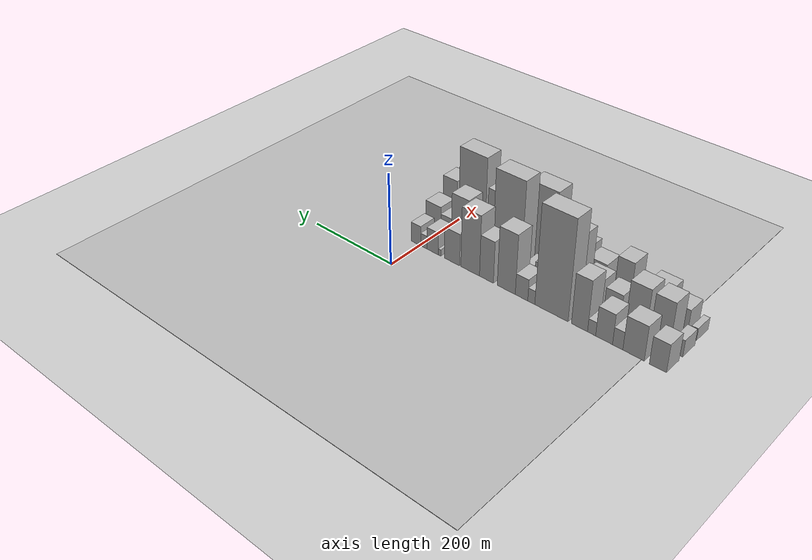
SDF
<sdf version="1.6">
 <world name="default">
  <include><name>ground_plane_1</name><uri>model://HANNAS_ground_plane</uri></include>
  <include>
   <name>ground_plane_2</name>
   <uri>model://HANNAS_ground_plane</uri>
   <pose>100 0 0  0 0 0</pose>
  </include>
  <model name="building_1">
   <static>1</static>
   <pose>100.0000 -531.4663 0 0.000000 0.000000 0.000000</pose>
   <link name="link">
    <pose>0 0 30.00 0 0 0</pose>
    <collision name="collision"><geometry><box><size>40.0000 33.0674 60.0000</size></box></geometry></collision>
    <visual name="visual">
     <cast_shadows>0</cast_shadows>
     <geometry><box><size>40.0000 33.0674 60.0000</size></box></geometry>
     <material>
      <script>
       <uri>model://HANNAS_wall/materials/scripts</uri>
       <uri>model://HANNAS_wall/materials/textures</uri>
       <name>vrc/HANNAS_wall</name>
      </script>
     </material>
    </visual>
   </link>
  </model>
  <model name="building_2">
   <static>1</static>
   <pose>100.0000 -483.7740 0 0.000000 0.000000 0.000000</pose>
   <link name="link">
    <pose>0 0 37.50 0 0 0</pose>
    <collision name="collision"><geometry><box><size>40.0000 42.3172 75.0000</size></box></geometry></collision>
    <visual name="visual">
     <cast_shadows>0</cast_shadows>
     <geometry><box><size>40.0000 42.3172 75.0000</size></box></geometry>
     <material>
      <script>
       <uri>model://HANNAS_wall/materials/scripts</uri>
       <uri>model://HANNAS_wall/materials/textures</uri>
       <name>vrc/HANNAS_wall</name>
      </script>
     </material>
    </visual>
   </link>
  </model>
  <model name="building_3">
   <static>1</static>
   <pose>100.0000 -452.2309 0 0.000000 0.000000 0.000000</pose>
   <link name="link">
    <pose>0 0 19.50 0 0 0</pose>
    <collision name="collision"><geometry><box><size>40.0000 20.7689 39.0000</size></box></geometry></collision>
    <visual name="visual">
     <cast_shadows>0</cast_shadows>
     <geometry><box><size>40.0000 20.7689 39.0000</size></box></geometry>
     <material>
      <script>
       <uri>model://HANNAS_wall/materials/scripts</uri>
       <uri>model://HANNAS_wall/materials/textures</uri>
       <name>vrc/HANNAS_wall</name>
      </script>
     </material>
    </visual>
   </link>
  </model>
  <model name="building_4">
   <static>1</static>
   <pose>100.0000 -424.5817 0 0.000000 0.000000 0.000000</pose>
   <link name="link">
    <pose>0 0 33.00 0 0 0</pose>
    <collision name="collision"><geometry><box><size>40.0000 34.5296 66.0000</size></box></geometry></collision>
    <visual name="visual">
     <cast_shadows>0</cast_shadows>
     <geometry><box><size>40.0000 34.5296 66.0000</size></box></geometry>
     <material>
      <script>
       <uri>model://HANNAS_wall/materials/scripts</uri>
       <uri>model://HANNAS_wall/materials/textures</uri>
       <name>vrc/HANNAS_wall</name>
      </script>
     </material>
    </visual>
   </link>
  </model>
  <model name="building_5">
   <static>1</static>
   <pose>100.0000 -398.8540 0 0.000000 0.000000 0.000000</pose>
   <link name="link">
    <pose>0 0 15.00 0 0 0</pose>
    <collision name="collision"><geometry><box><size>40.0000 16.9257 30.0000</size></box></geometry></collision>
    <visual name="visual">
     <cast_shadows>0</cast_shadows>
     <geometry><box><size>40.0000 16.9257 30.0000</size></box></geometry>
     <material>
      <script>
       <uri>model://HANNAS_wall/materials/scripts</uri>
       <uri>model://HANNAS_wall/materials/textures</uri>
       <name>vrc/HANNAS_wall</name>
      </script>
     </material>
    </visual>
   </link>
  </model>
  <model name="building_6">
   <static>1</static>
   <pose>100.0000 -373.3653 0 0.000000 0.000000 0.000000</pose>
   <link name="link">
    <pose>0 0 55.50 0 0 0</pose>
    <collision name="collision"><geometry><box><size>40.0000 34.0517 111.0000</size></box></geometry></collision>
    <visual name="visual">
     <cast_shadows>0</cast_shadows>
     <geometry><box><size>40.0000 34.0517 111.0000</size></box></geometry>
     <material>
      <script>
       <uri>model://HANNAS_wall/materials/scripts</uri>
       <uri>model://HANNAS_wall/materials/textures</uri>
       <name>vrc/HANNAS_wall</name>
      </script>
     </material>
    </visual>
   </link>
  </model>
  <model name="building_7">
   <static>1</static>
   <pose>100.0000 -312.9656 0 0.000000 0.000000 0.000000</pose>
   <link name="link">
    <pose>0 0 109.50 0 0 0</pose>
    <collision name="collision"><geometry><box><size>40.0000 72.7477 219.0000</size></box></geometry></collision>
    <visual name="visual">
     <cast_shadows>0</cast_shadows>
     <geometry><box><size>40.0000 72.7477 219.0000</size></box></geometry>
     <material>
      <script>
       <uri>model://HANNAS_wall/materials/scripts</uri>
       <uri>model://HANNAS_wall/materials/textures</uri>
       <name>vrc/HANNAS_wall</name>
      </script>
     </material>
    </visual>
   </link>
  </model>
  <model name="building_8">
   <static>1</static>
   <pose>100.0000 -268.7394 0 0.000000 0.000000 0.000000</pose>
   <link name="link">
    <pose>0 0 15.00 0 0 0</pose>
    <collision name="collision"><geometry><box><size>40.0000 15.7048 30.0000</size></box></geometry></collision>
    <visual name="visual">
     <cast_shadows>0</cast_shadows>
     <geometry><box><size>40.0000 15.7048 30.0000</size></box></geometry>
     <material>
      <script>
       <uri>model://HANNAS_wall/materials/scripts</uri>
       <uri>model://HANNAS_wall/materials/textures</uri>
       <name>vrc/HANNAS_wall</name>
      </script>
     </material>
    </visual>
   </link>
  </model>
  <model name="building_9">
   <static>1</static>
   <pose>100.0000 -246.7180 0 0.000000 0.000000 0.000000</pose>
   <link name="link">
    <pose>0 0 24.00 0 0 0</pose>
    <collision name="collision"><geometry><box><size>40.0000 28.3378 48.0000</size></box></geometry></collision>
    <visual name="visual">
     <cast_shadows>0</cast_shadows>
     <geometry><box><size>40.0000 28.3378 48.0000</size></box></geometry>
     <material>
      <script>
       <uri>model://HANNAS_wall/materials/scripts</uri>
       <uri>model://HANNAS_wall/materials/textures</uri>
       <name>vrc/HANNAS_wall</name>
      </script>
     </material>
    </visual>
   </link>
  </model>
  <model name="building_10">
   <static>1</static>
   <pose>100.0000 -211.7277 0 0.000000 0.000000 0.000000</pose>
   <link name="link">
    <pose>0 0 66.00 0 0 0</pose>
    <collision name="collision"><geometry><box><size>40.0000 41.6429 132.0000</size></box></geometry></collision>
    <visual name="visual">
     <cast_shadows>0</cast_shadows>
     <geometry><box><size>40.0000 41.6429 132.0000</size></box></geometry>
     <material>
      <script>
       <uri>model://HANNAS_wall/materials/scripts</uri>
       <uri>model://HANNAS_wall/materials/textures</uri>
       <name>vrc/HANNAS_wall</name>
      </script>
     </material>
    </visual>
   </link>
  </model>
  <model name="building_11">
   <static>1</static>
   <pose>100.0000 -165.4333 0 0.000000 0.000000 0.000000</pose>
   <link name="link">
    <pose>0 0 46.50 0 0 0</pose>
    <collision name="collision"><geometry><box><size>40.0000 32.9459 93.0000</size></box></geometry></collision>
    <visual name="visual">
     <cast_shadows>0</cast_shadows>
     <geometry><box><size>40.0000 32.9459 93.0000</size></box></geometry>
     <material>
      <script>
       <uri>model://HANNAS_wall/materials/scripts</uri>
       <uri>model://HANNAS_wall/materials/textures</uri>
       <name>vrc/HANNAS_wall</name>
      </script>
     </material>
    </visual>
   </link>
  </model>
  <model name="building_12">
   <static>1</static>
   <pose>100.0000 -126.4425 0 0.000000 0.000000 0.000000</pose>
   <link name="link">
    <pose>0 0 67.50 0 0 0</pose>
    <collision name="collision"><geometry><box><size>40.0000 45.0357 135.0000</size></box></geometry></collision>
    <visual name="visual">
     <cast_shadows>0</cast_shadows>
     <geometry><box><size>40.0000 45.0357 135.0000</size></box></geometry>
     <material>
      <script>
       <uri>model://HANNAS_wall/materials/scripts</uri>
       <uri>model://HANNAS_wall/materials/textures</uri>
       <name>vrc/HANNAS_wall</name>
      </script>
     </material>
    </visual>
   </link>
  </model>
  <model name="building_13">
   <static>1</static>
   <pose>100.0000 -82.1082 0 0.000000 0.000000 0.000000</pose>
   <link name="link">
    <pose>0 0 36.00 0 0 0</pose>
    <collision name="collision"><geometry><box><size>40.0000 37.6330 72.0000</size></box></geometry></collision>
    <visual name="visual">
     <cast_shadows>0</cast_shadows>
     <geometry><box><size>40.0000 37.6330 72.0000</size></box></geometry>
     <material>
      <script>
       <uri>model://HANNAS_wall/materials/scripts</uri>
       <uri>model://HANNAS_wall/materials/textures</uri>
       <name>vrc/HANNAS_wall</name>
      </script>
     </material>
    </visual>
   </link>
  </model>
  <model name="building_14">
   <static>1</static>
   <pose>100.0000 -51.2164 0 0.000000 0.000000 0.000000</pose>
   <link name="link">
    <pose>0 0 7.50 0 0 0</pose>
    <collision name="collision"><geometry><box><size>40.0000 6.1504 15.0000</size></box></geometry></collision>
    <visual name="visual">
     <cast_shadows>0</cast_shadows>
     <geometry><box><size>40.0000 6.1504 15.0000</size></box></geometry>
     <material>
      <script>
       <uri>model://HANNAS_wall/materials/scripts</uri>
       <uri>model://HANNAS_wall/materials/textures</uri>
       <name>vrc/HANNAS_wall</name>
      </script>
     </material>
    </visual>
   </link>
  </model>
  <model name="building_15">
   <static>1</static>
   <pose>100.0000 -33.5812 0 0.000000 0.000000 0.000000</pose>
   <link name="link">
    <pose>0 0 25.50 0 0 0</pose>
    <collision name="collision"><geometry><box><size>40.0000 29.1201 51.0000</size></box></geometry></collision>
    <visual name="visual">
     <cast_shadows>0</cast_shadows>
     <geometry><box><size>40.0000 29.1201 51.0000</size></box></geometry>
     <material>
      <script>
       <uri>model://HANNAS_wall/materials/scripts</uri>
       <uri>model://HANNAS_wall/materials/textures</uri>
       <name>vrc/HANNAS_wall</name>
      </script>
     </material>
    </visual>
   </link>
  </model>
  <model name="building_16">
   <static>1</static>
   <pose>100.0000 -11.0467 0 0.000000 0.000000 0.000000</pose>
   <link name="link">
    <pose>0 0 15.00 0 0 0</pose>
    <collision name="collision"><geometry><box><size>40.0000 15.9488 30.0000</size></box></geometry></collision>
    <visual name="visual">
     <cast_shadows>0</cast_shadows>
     <geometry><box><size>40.0000 15.9488 30.0000</size></box></geometry>
     <material>
      <script>
       <uri>model://HANNAS_wall/materials/scripts</uri>
       <uri>model://HANNAS_wall/materials/textures</uri>
       <name>vrc/HANNAS_wall</name>
      </script>
     </material>
    </visual>
   </link>
  </model>
  <model name="building_17">
   <static>1</static>
   <pose>100.0000 9.3485 0 0.000000 0.000000 0.000000</pose>
   <link name="link">
    <pose>0 0 22.50 0 0 0</pose>
    <collision name="collision"><geometry><box><size>40.0000 24.8416 45.0000</size></box></geometry></collision>
    <visual name="visual">
     <cast_shadows>0</cast_shadows>
     <geometry><box><size>40.0000 24.8416 45.0000</size></box></geometry>
     <material>
      <script>
       <uri>model://HANNAS_wall/materials/scripts</uri>
       <uri>model://HANNAS_wall/materials/textures</uri>
       <name>vrc/HANNAS_wall</name>
      </script>
     </material>
    </visual>
   </link>
  </model>
  <model name="building_35">
   <static>1</static>
   <pose>152.0000 -538.6052 0 0.000000 0.000000 0.000000</pose>
   <link name="link">
    <pose>0 0 18.00 0 0 0</pose>
    <collision name="collision"><geometry><box><size>40.0000 18.7897 36.0000</size></box></geometry></collision>
    <visual name="visual">
     <cast_shadows>0</cast_shadows>
     <geometry><box><size>40.0000 18.7897 36.0000</size></box></geometry>
     <material>
      <script>
       <uri>model://HANNAS_wall/materials/scripts</uri>
       <uri>model://HANNAS_wall/materials/textures</uri>
       <name>vrc/HANNAS_wall</name>
      </script>
     </material>
    </visual>
   </link>
  </model>
  <model name="building_36">
   <static>1</static>
   <pose>152.0000 -502.4161 0 0.000000 0.000000 0.000000</pose>
   <link name="link">
    <pose>0 0 51.00 0 0 0</pose>
    <collision name="collision"><geometry><box><size>40.0000 39.5884 102.0000</size></box></geometry></collision>
    <visual name="visual">
     <cast_shadows>0</cast_shadows>
     <geometry><box><size>40.0000 39.5884 102.0000</size></box></geometry>
     <material>
      <script>
       <uri>model://HANNAS_wall/materials/scripts</uri>
       <uri>model://HANNAS_wall/materials/textures</uri>
       <name>vrc/HANNAS_wall</name>
      </script>
     </material>
    </visual>
   </link>
  </model>
  <model name="building_37">
   <static>1</static>
   <pose>152.0000 -453.9032 0 0.000000 0.000000 0.000000</pose>
   <link name="link">
    <pose>0 0 52.50 0 0 0</pose>
    <collision name="collision"><geometry><box><size>40.0000 41.4374 105.0000</size></box></geometry></collision>
    <visual name="visual">
     <cast_shadows>0</cast_shadows>
     <geometry><box><size>40.0000 41.4374 105.0000</size></box></geometry>
     <material>
      <script>
       <uri>model://HANNAS_wall/materials/scripts</uri>
       <uri>model://HANNAS_wall/materials/textures</uri>
       <name>vrc/HANNAS_wall</name>
      </script>
     </material>
    </visual>
   </link>
  </model>
  <model name="building_38">
   <static>1</static>
   <pose>152.0000 -405.3885 0 0.000000 0.000000 0.000000</pose>
   <link name="link">
    <pose>0 0 33.00 0 0 0</pose>
    <collision name="collision"><geometry><box><size>40.0000 35.5921 66.0000</size></box></geometry></collision>
    <visual name="visual">
     <cast_shadows>0</cast_shadows>
     <geometry><box><size>40.0000 35.5921 66.0000</size></box></geometry>
     <material>
      <script>
       <uri>model://HANNAS_wall/materials/scripts</uri>
       <uri>model://HANNAS_wall/materials/textures</uri>
       <name>vrc/HANNAS_wall</name>
      </script>
     </material>
    </visual>
   </link>
  </model>
  <model name="building_39">
   <static>1</static>
   <pose>152.0000 -359.5633 0 0.000000 0.000000 0.000000</pose>
   <link name="link">
    <pose>0 0 37.50 0 0 0</pose>
    <collision name="collision"><geometry><box><size>40.0000 42.0581 75.0000</size></box></geometry></collision>
    <visual name="visual">
     <cast_shadows>0</cast_shadows>
     <geometry><box><size>40.0000 42.0581 75.0000</size></box></geometry>
     <material>
      <script>
       <uri>model://HANNAS_wall/materials/scripts</uri>
       <uri>model://HANNAS_wall/materials/textures</uri>
       <name>vrc/HANNAS_wall</name>
      </script>
     </material>
    </visual>
   </link>
  </model>
  <model name="building_40">
   <static>1</static>
   <pose>152.0000 -310.0447 0 0.000000 0.000000 0.000000</pose>
   <link name="link">
    <pose>0 0 75.00 0 0 0</pose>
    <collision name="collision"><geometry><box><size>40.0000 46.9792 150.0000</size></box></geometry></collision>
    <visual name="visual">
     <cast_shadows>0</cast_shadows>
     <geometry><box><size>40.0000 46.9792 150.0000</size></box></geometry>
     <material>
      <script>
       <uri>model://HANNAS_wall/materials/scripts</uri>
       <uri>model://HANNAS_wall/materials/textures</uri>
       <name>vrc/HANNAS_wall</name>
      </script>
     </material>
    </visual>
   </link>
  </model>
  <model name="building_41">
   <static>1</static>
   <pose>152.0000 -275.4106 0 0.000000 0.000000 0.000000</pose>
   <link name="link">
    <pose>0 0 19.50 0 0 0</pose>
    <collision name="collision"><geometry><box><size>40.0000 22.2889 39.0000</size></box></geometry></collision>
    <visual name="visual">
     <cast_shadows>0</cast_shadows>
     <geometry><box><size>40.0000 22.2889 39.0000</size></box></geometry>
     <material>
      <script>
       <uri>model://HANNAS_wall/materials/scripts</uri>
       <uri>model://HANNAS_wall/materials/textures</uri>
       <name>vrc/HANNAS_wall</name>
      </script>
     </material>
    </visual>
   </link>
  </model>
  <model name="building_42">
   <static>1</static>
   <pose>152.0000 -250.4712 0 0.000000 0.000000 0.000000</pose>
   <link name="link">
    <pose>0 0 24.00 0 0 0</pose>
    <collision name="collision"><geometry><box><size>40.0000 27.5900 48.0000</size></box></geometry></collision>
    <visual name="visual">
     <cast_shadows>0</cast_shadows>
     <geometry><box><size>40.0000 27.5900 48.0000</size></box></geometry>
     <material>
      <script>
       <uri>model://HANNAS_wall/materials/scripts</uri>
       <uri>model://HANNAS_wall/materials/textures</uri>
       <name>vrc/HANNAS_wall</name>
      </script>
     </material>
    </visual>
   </link>
  </model>
  <model name="building_43">
   <static>1</static>
   <pose>152.0000 -221.2421 0 0.000000 0.000000 0.000000</pose>
   <link name="link">
    <pose>0 0 16.50 0 0 0</pose>
    <collision name="collision"><geometry><box><size>40.0000 18.8682 33.0000</size></box></geometry></collision>
    <visual name="visual">
     <cast_shadows>0</cast_shadows>
     <geometry><box><size>40.0000 18.8682 33.0000</size></box></geometry>
     <material>
      <script>
       <uri>model://HANNAS_wall/materials/scripts</uri>
       <uri>model://HANNAS_wall/materials/textures</uri>
       <name>vrc/HANNAS_wall</name>
      </script>
     </material>
    </visual>
   </link>
  </model>
  <model name="building_44">
   <static>1</static>
   <pose>152.0000 -171.8982 0 0.000000 0.000000 0.000000</pose>
   <link name="link">
    <pose>0 0 103.50 0 0 0</pose>
    <collision name="collision"><geometry><box><size>40.0000 67.8195 207.0000</size></box></geometry></collision>
    <visual name="visual">
     <cast_shadows>0</cast_shadows>
     <geometry><box><size>40.0000 67.8195 207.0000</size></box></geometry>
     <material>
      <script>
       <uri>model://HANNAS_wall/materials/scripts</uri>
       <uri>model://HANNAS_wall/materials/textures</uri>
       <name>vrc/HANNAS_wall</name>
      </script>
     </material>
    </visual>
   </link>
  </model>
  <model name="building_45">
   <static>1</static>
   <pose>152.0000 -104.2163 0 0.000000 0.000000 0.000000</pose>
   <link name="link">
    <pose>0 0 43.50 0 0 0</pose>
    <collision name="collision"><geometry><box><size>40.0000 51.5444 87.0000</size></box></geometry></collision>
    <visual name="visual">
     <cast_shadows>0</cast_shadows>
     <geometry><box><size>40.0000 51.5444 87.0000</size></box></geometry>
     <material>
      <script>
       <uri>model://HANNAS_wall/materials/scripts</uri>
       <uri>model://HANNAS_wall/materials/textures</uri>
       <name>vrc/HANNAS_wall</name>
      </script>
     </material>
    </visual>
   </link>
  </model>
  <model name="building_46">
   <static>1</static>
   <pose>152.0000 -57.3280 0 0.000000 0.000000 0.000000</pose>
   <link name="link">
    <pose>0 0 55.50 0 0 0</pose>
    <collision name="collision"><geometry><box><size>40.0000 42.2322 111.0000</size></box></geometry></collision>
    <visual name="visual">
     <cast_shadows>0</cast_shadows>
     <geometry><box><size>40.0000 42.2322 111.0000</size></box></geometry>
     <material>
      <script>
       <uri>model://HANNAS_wall/materials/scripts</uri>
       <uri>model://HANNAS_wall/materials/textures</uri>
       <name>vrc/HANNAS_wall</name>
      </script>
     </material>
    </visual>
   </link>
  </model>
  <model name="building_47">
   <static>1</static>
   <pose>152.0000 -22.6772 0 0.000000 0.000000 0.000000</pose>
   <link name="link">
    <pose>0 0 25.50 0 0 0</pose>
    <collision name="collision"><geometry><box><size>40.0000 27.0694 51.0000</size></box></geometry></collision>
    <visual name="visual">
     <cast_shadows>0</cast_shadows>
     <geometry><box><size>40.0000 27.0694 51.0000</size></box></geometry>
     <material>
      <script>
       <uri>model://HANNAS_wall/materials/scripts</uri>
       <uri>model://HANNAS_wall/materials/textures</uri>
       <name>vrc/HANNAS_wall</name>
      </script>
     </material>
    </visual>
   </link>
  </model>
  <model name="building_48">
   <static>1</static>
   <pose>152.0000 10.2735 0 0.000000 0.000000 0.000000</pose>
   <link name="link">
    <pose>0 0 33.00 0 0 0</pose>
    <collision name="collision"><geometry><box><size>40.0000 38.8319 66.0000</size></box></geometry></collision>
    <visual name="visual">
     <cast_shadows>0</cast_shadows>
     <geometry><box><size>40.0000 38.8319 66.0000</size></box></geometry>
     <material>
      <script>
       <uri>model://HANNAS_wall/materials/scripts</uri>
       <uri>model://HANNAS_wall/materials/textures</uri>
       <name>vrc/HANNAS_wall</name>
      </script>
     </material>
    </visual>
   </link>
  </model>
  <model name="building_66">
   <static>1</static>
   <pose>204.0000 -537.8265 0 0.000000 0.000000 0.000000</pose>
   <link name="link">
    <pose>0 0 13.50 0 0 0</pose>
    <collision name="collision"><geometry><box><size>40.0000 12.3471 27.0000</size></box></geometry></collision>
    <visual name="visual">
     <cast_shadows>0</cast_shadows>
     <geometry><box><size>40.0000 12.3471 27.0000</size></box></geometry>
     <material>
      <script>
       <uri>model://HANNAS_wall/materials/scripts</uri>
       <uri>model://HANNAS_wall/materials/textures</uri>
       <name>vrc/HANNAS_wall</name>
      </script>
     </material>
    </visual>
   </link>
  </model>
  <model name="building_67">
   <static>1</static>
   <pose>204.0000 -509.7639 0 0.000000 0.000000 0.000000</pose>
   <link name="link">
    <pose>0 0 28.50 0 0 0</pose>
    <collision name="collision"><geometry><box><size>40.0000 31.7780 57.0000</size></box></geometry></collision>
    <visual name="visual">
     <cast_shadows>0</cast_shadows>
     <geometry><box><size>40.0000 31.7780 57.0000</size></box></geometry>
     <material>
      <script>
       <uri>model://HANNAS_wall/materials/scripts</uri>
       <uri>model://HANNAS_wall/materials/textures</uri>
       <name>vrc/HANNAS_wall</name>
      </script>
     </material>
    </visual>
   </link>
  </model>
  <model name="building_68">
   <static>1</static>
   <pose>204.0000 -461.7228 0 0.000000 0.000000 0.000000</pose>
   <link name="link">
    <pose>0 0 39.00 0 0 0</pose>
    <collision name="collision"><geometry><box><size>40.0000 44.3043 78.0000</size></box></geometry></collision>
    <visual name="visual">
     <cast_shadows>0</cast_shadows>
     <geometry><box><size>40.0000 44.3043 78.0000</size></box></geometry>
     <material>
      <script>
       <uri>model://HANNAS_wall/materials/scripts</uri>
       <uri>model://HANNAS_wall/materials/textures</uri>
       <name>vrc/HANNAS_wall</name>
      </script>
     </material>
    </visual>
   </link>
  </model>
  <model name="building_69">
   <static>1</static>
   <pose>204.0000 -424.3368 0 0.000000 0.000000 0.000000</pose>
   <link name="link">
    <pose>0 0 27.00 0 0 0</pose>
    <collision name="collision"><geometry><box><size>40.0000 30.4676 54.0000</size></box></geometry></collision>
    <visual name="visual">
     <cast_shadows>0</cast_shadows>
     <geometry><box><size>40.0000 30.4676 54.0000</size></box></geometry>
     <material>
      <script>
       <uri>model://HANNAS_wall/materials/scripts</uri>
       <uri>model://HANNAS_wall/materials/textures</uri>
       <name>vrc/HANNAS_wall</name>
      </script>
     </material>
    </visual>
   </link>
  </model>
  <model name="building_70">
   <static>1</static>
   <pose>204.0000 -391.8073 0 0.000000 0.000000 0.000000</pose>
   <link name="link">
    <pose>0 0 49.50 0 0 0</pose>
    <collision name="collision"><geometry><box><size>40.0000 34.5915 99.0000</size></box></geometry></collision>
    <visual name="visual">
     <cast_shadows>0</cast_shadows>
     <geometry><box><size>40.0000 34.5915 99.0000</size></box></geometry>
     <material>
      <script>
       <uri>model://HANNAS_wall/materials/scripts</uri>
       <uri>model://HANNAS_wall/materials/textures</uri>
       <name>vrc/HANNAS_wall</name>
      </script>
     </material>
    </visual>
   </link>
  </model>
  <model name="building_71">
   <static>1</static>
   <pose>204.0000 -364.9605 0 0.000000 0.000000 0.000000</pose>
   <link name="link">
    <pose>0 0 16.50 0 0 0</pose>
    <collision name="collision"><geometry><box><size>40.0000 19.1022 33.0000</size></box></geometry></collision>
    <visual name="visual">
     <cast_shadows>0</cast_shadows>
     <geometry><box><size>40.0000 19.1022 33.0000</size></box></geometry>
     <material>
      <script>
       <uri>model://HANNAS_wall/materials/scripts</uri>
       <uri>model://HANNAS_wall/materials/textures</uri>
       <name>vrc/HANNAS_wall</name>
      </script>
     </material>
    </visual>
   </link>
  </model>
  <model name="building_72">
   <static>1</static>
   <pose>204.0000 -335.0916 0 0.000000 0.000000 0.000000</pose>
   <link name="link">
    <pose>0 0 34.50 0 0 0</pose>
    <collision name="collision"><geometry><box><size>40.0000 40.6355 69.0000</size></box></geometry></collision>
    <visual name="visual">
     <cast_shadows>0</cast_shadows>
     <geometry><box><size>40.0000 40.6355 69.0000</size></box></geometry>
     <material>
      <script>
       <uri>model://HANNAS_wall/materials/scripts</uri>
       <uri>model://HANNAS_wall/materials/textures</uri>
       <name>vrc/HANNAS_wall</name>
      </script>
     </material>
    </visual>
   </link>
  </model>
  <model name="building_73">
   <static>1</static>
   <pose>204.0000 -292.4674 0 0.000000 0.000000 0.000000</pose>
   <link name="link">
    <pose>0 0 43.50 0 0 0</pose>
    <collision name="collision"><geometry><box><size>40.0000 44.6129 87.0000</size></box></geometry></collision>
    <visual name="visual">
     <cast_shadows>0</cast_shadows>
     <geometry><box><size>40.0000 44.6129 87.0000</size></box></geometry>
     <material>
      <script>
       <uri>model://HANNAS_wall/materials/scripts</uri>
       <uri>model://HANNAS_wall/materials/textures</uri>
       <name>vrc/HANNAS_wall</name>
      </script>
     </material>
    </visual>
   </link>
  </model>
  <model name="building_74">
   <static>1</static>
   <pose>204.0000 -256.0348 0 0.000000 0.000000 0.000000</pose>
   <link name="link">
    <pose>0 0 27.00 0 0 0</pose>
    <collision name="collision"><geometry><box><size>40.0000 28.2523 54.0000</size></box></geometry></collision>
    <visual name="visual">
     <cast_shadows>0</cast_shadows>
     <geometry><box><size>40.0000 28.2523 54.0000</size></box></geometry>
     <material>
      <script>
       <uri>model://HANNAS_wall/materials/scripts</uri>
       <uri>model://HANNAS_wall/materials/textures</uri>
       <name>vrc/HANNAS_wall</name>
      </script>
     </material>
    </visual>
   </link>
  </model>
  <model name="building_75">
   <static>1</static>
   <pose>204.0000 -210.3603 0 0.000000 0.000000 0.000000</pose>
   <link name="link">
    <pose>0 0 87.00 0 0 0</pose>
    <collision name="collision"><geometry><box><size>40.0000 63.0967 174.0000</size></box></geometry></collision>
    <visual name="visual">
     <cast_shadows>0</cast_shadows>
     <geometry><box><size>40.0000 63.0967 174.0000</size></box></geometry>
     <material>
      <script>
       <uri>model://HANNAS_wall/materials/scripts</uri>
       <uri>model://HANNAS_wall/materials/textures</uri>
       <name>vrc/HANNAS_wall</name>
      </script>
     </material>
    </visual>
   </link>
  </model>
  <model name="building_76">
   <static>1</static>
   <pose>204.0000 -166.8560 0 0.000000 0.000000 0.000000</pose>
   <link name="link">
    <pose>0 0 22.50 0 0 0</pose>
    <collision name="collision"><geometry><box><size>40.0000 23.9120 45.0000</size></box></geometry></collision>
    <visual name="visual">
     <cast_shadows>0</cast_shadows>
     <geometry><box><size>40.0000 23.9120 45.0000</size></box></geometry>
     <material>
      <script>
       <uri>model://HANNAS_wall/materials/scripts</uri>
       <uri>model://HANNAS_wall/materials/textures</uri>
       <name>vrc/HANNAS_wall</name>
      </script>
     </material>
    </visual>
   </link>
  </model>
  <model name="building_77">
   <static>1</static>
   <pose>204.0000 -139.9393 0 0.000000 0.000000 0.000000</pose>
   <link name="link">
    <pose>0 0 25.50 0 0 0</pose>
    <collision name="collision"><geometry><box><size>40.0000 29.9214 51.0000</size></box></geometry></collision>
    <visual name="visual">
     <cast_shadows>0</cast_shadows>
     <geometry><box><size>40.0000 29.9214 51.0000</size></box></geometry>
     <material>
      <script>
       <uri>model://HANNAS_wall/materials/scripts</uri>
       <uri>model://HANNAS_wall/materials/textures</uri>
       <name>vrc/HANNAS_wall</name>
      </script>
     </material>
    </visual>
   </link>
  </model>
  <model name="building_78">
   <static>1</static>
   <pose>204.0000 -101.9505 0 0.000000 0.000000 0.000000</pose>
   <link name="link">
    <pose>0 0 58.50 0 0 0</pose>
    <collision name="collision"><geometry><box><size>40.0000 38.0561 117.0000</size></box></geometry></collision>
    <visual name="visual">
     <cast_shadows>0</cast_shadows>
     <geometry><box><size>40.0000 38.0561 117.0000</size></box></geometry>
     <material>
      <script>
       <uri>model://HANNAS_wall/materials/scripts</uri>
       <uri>model://HANNAS_wall/materials/textures</uri>
       <name>vrc/HANNAS_wall</name>
      </script>
     </material>
    </visual>
   </link>
  </model>
  <model name="building_79">
   <static>1</static>
   <pose>204.0000 -44.6009 0 0.000000 0.000000 0.000000</pose>
   <link name="link">
    <pose>0 0 90.00 0 0 0</pose>
    <collision name="collision"><geometry><box><size>40.0000 66.6431 180.0000</size></box></geometry></collision>
    <visual name="visual">
     <cast_shadows>0</cast_shadows>
     <geometry><box><size>40.0000 66.6431 180.0000</size></box></geometry>
     <material>
      <script>
       <uri>model://HANNAS_wall/materials/scripts</uri>
       <uri>model://HANNAS_wall/materials/textures</uri>
       <name>vrc/HANNAS_wall</name>
      </script>
     </material>
    </visual>
   </link>
  </model>
  <model name="building_80">
   <static>1</static>
   <pose>204.0000 11.7721 0 0.000000 0.000000 0.000000</pose>
   <link name="link">
    <pose>0 0 49.50 0 0 0</pose>
    <collision name="collision"><geometry><box><size>40.0000 36.1029 99.0000</size></box></geometry></collision>
    <visual name="visual">
     <cast_shadows>0</cast_shadows>
     <geometry><box><size>40.0000 36.1029 99.0000</size></box></geometry>
     <material>
      <script>
       <uri>model://HANNAS_wall/materials/scripts</uri>
       <uri>model://HANNAS_wall/materials/textures</uri>
       <name>vrc/HANNAS_wall</name>
      </script>
     </material>
    </visual>
   </link>
  </model>
 </world>
</sdf>
